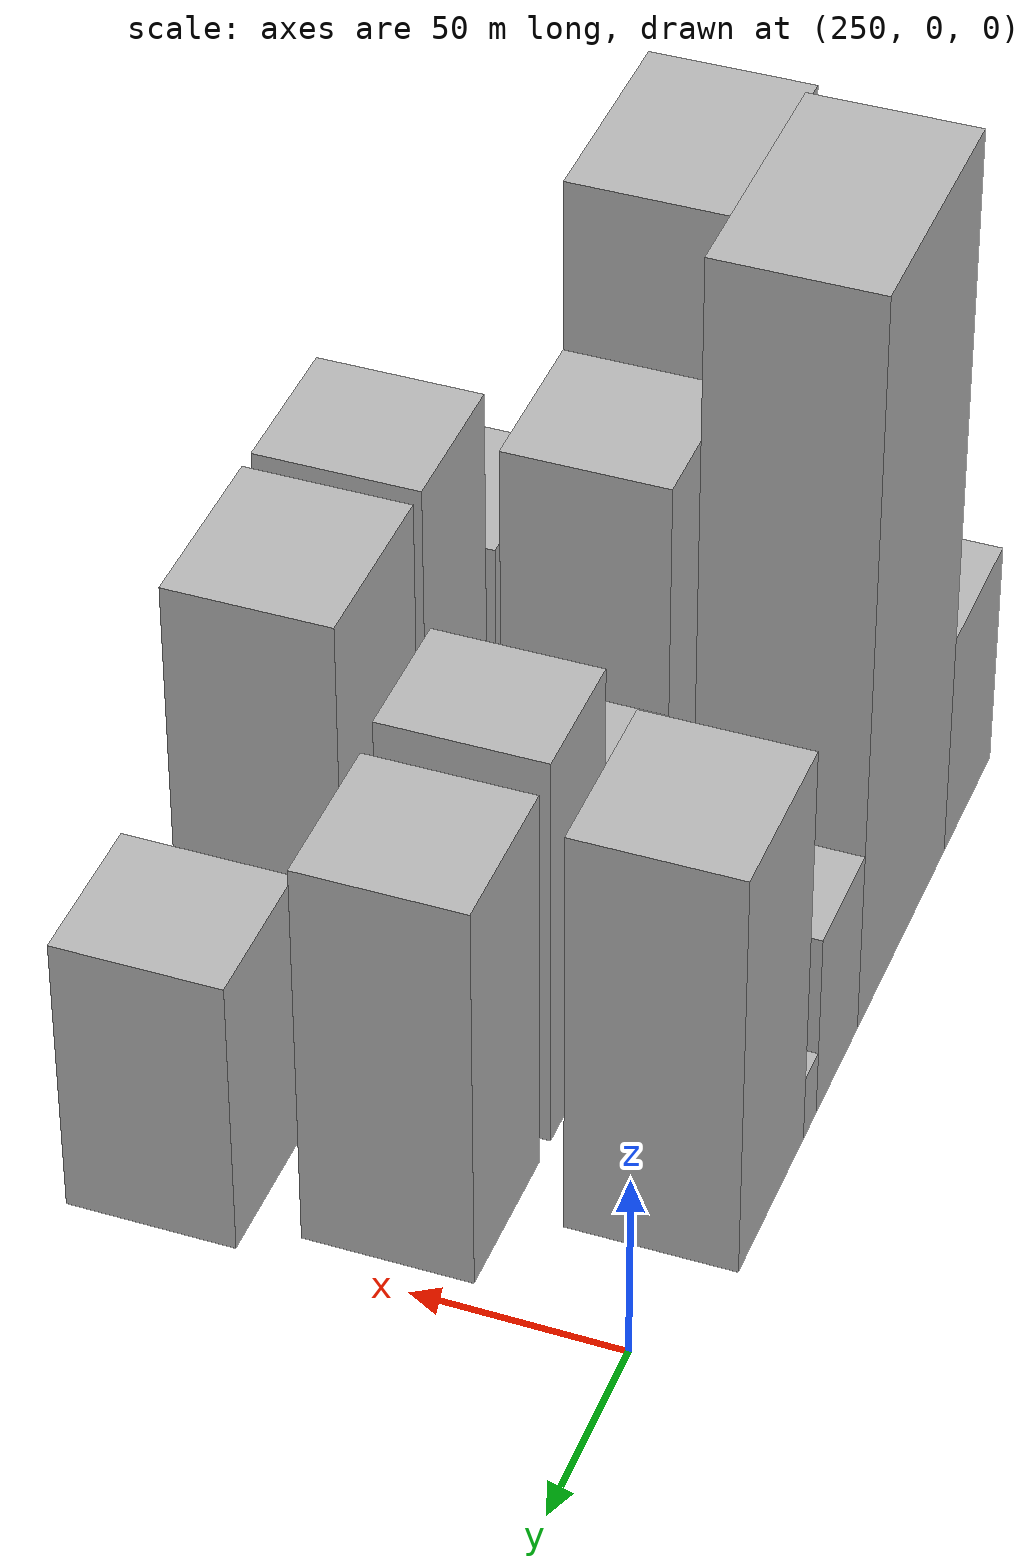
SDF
<sdf version="1.6">
 <world name="default">
  <model name="building_173">
   <static>1</static>
   <pose>256.0000 -196.6353 0 0.000000 0.000000 0.000000</pose>
   <link name="link">
    <pose>0 0 31.50 0 0 0</pose>
    <collision name="collision"><geometry><box><size>40.0000 36.3689 63.0000</size></box></geometry></collision>
    <visual name="visual">
     <cast_shadows>0</cast_shadows>
     <geometry><box><size>40.0000 36.3689 63.0000</size></box></geometry>
     <material>
      <script>
       <uri>model://HANNAS_wall/materials/scripts</uri>
       <uri>model://HANNAS_wall/materials/textures</uri>
       <name>vrc/HANNAS_wall</name>
      </script>
     </material>
    </visual>
   </link>
  </model>
  <model name="building_174">
   <static>1</static>
   <pose>256.0000 -145.7598 0 0.000000 0.000000 0.000000</pose>
   <link name="link">
    <pose>0 0 100.50 0 0 0</pose>
    <collision name="collision"><geometry><box><size>40.0000 65.3820 201.0000</size></box></geometry></collision>
    <visual name="visual">
     <cast_shadows>0</cast_shadows>
     <geometry><box><size>40.0000 65.3820 201.0000</size></box></geometry>
     <material>
      <script>
       <uri>model://HANNAS_wall/materials/scripts</uri>
       <uri>model://HANNAS_wall/materials/textures</uri>
       <name>vrc/HANNAS_wall</name>
      </script>
     </material>
    </visual>
   </link>
  </model>
  <model name="building_175">
   <static>1</static>
   <pose>256.0000 -98.2858 0 0.000000 0.000000 0.000000</pose>
   <link name="link">
    <pose>0 0 25.50 0 0 0</pose>
    <collision name="collision"><geometry><box><size>40.0000 29.5660 51.0000</size></box></geometry></collision>
    <visual name="visual">
     <cast_shadows>0</cast_shadows>
     <geometry><box><size>40.0000 29.5660 51.0000</size></box></geometry>
     <material>
      <script>
       <uri>model://HANNAS_wall/materials/scripts</uri>
       <uri>model://HANNAS_wall/materials/textures</uri>
       <name>vrc/HANNAS_wall</name>
      </script>
     </material>
    </visual>
   </link>
  </model>
  <model name="building_176">
   <static>1</static>
   <pose>256.0000 -79.0485 0 0.000000 0.000000 0.000000</pose>
   <link name="link">
    <pose>0 0 9.00 0 0 0</pose>
    <collision name="collision"><geometry><box><size>40.0000 8.9086 18.0000</size></box></geometry></collision>
    <visual name="visual">
     <cast_shadows>0</cast_shadows>
     <geometry><box><size>40.0000 8.9086 18.0000</size></box></geometry>
     <material>
      <script>
       <uri>model://HANNAS_wall/materials/scripts</uri>
       <uri>model://HANNAS_wall/materials/textures</uri>
       <name>vrc/HANNAS_wall</name>
      </script>
     </material>
    </visual>
   </link>
  </model>
  <model name="building_177">
   <static>1</static>
   <pose>256.0000 -52.5292 0 0.000000 0.000000 0.000000</pose>
   <link name="link">
    <pose>0 0 55.50 0 0 0</pose>
    <collision name="collision"><geometry><box><size>40.0000 44.1301 111.0000</size></box></geometry></collision>
    <visual name="visual">
     <cast_shadows>0</cast_shadows>
     <geometry><box><size>40.0000 44.1301 111.0000</size></box></geometry>
     <material>
      <script>
       <uri>model://HANNAS_wall/materials/scripts</uri>
       <uri>model://HANNAS_wall/materials/textures</uri>
       <name>vrc/HANNAS_wall</name>
      </script>
     </material>
    </visual>
   </link>
  </model>
  <model name="building_220">
   <static>1</static>
   <pose>308.0000 -235.8043 0 0.000000 0.000000 0.000000</pose>
   <link name="link">
    <pose>0 0 16.50 0 0 0</pose>
    <collision name="collision"><geometry><box><size>40.0000 19.6194 33.0000</size></box></geometry></collision>
    <visual name="visual">
     <cast_shadows>0</cast_shadows>
     <geometry><box><size>40.0000 19.6194 33.0000</size></box></geometry>
     <material>
      <script>
       <uri>model://HANNAS_wall/materials/scripts</uri>
       <uri>model://HANNAS_wall/materials/textures</uri>
       <name>vrc/HANNAS_wall</name>
      </script>
     </material>
    </visual>
   </link>
  </model>
  <model name="building_221">
   <static>1</static>
   <pose>308.0000 -198.3180 0 0.000000 0.000000 0.000000</pose>
   <link name="link">
    <pose>0 0 85.50 0 0 0</pose>
    <collision name="collision"><geometry><box><size>40.0000 55.3532 171.0000</size></box></geometry></collision>
    <visual name="visual">
     <cast_shadows>0</cast_shadows>
     <geometry><box><size>40.0000 55.3532 171.0000</size></box></geometry>
     <material>
      <script>
       <uri>model://HANNAS_wall/materials/scripts</uri>
       <uri>model://HANNAS_wall/materials/textures</uri>
       <name>vrc/HANNAS_wall</name>
      </script>
     </material>
    </visual>
   </link>
  </model>
  <model name="building_222">
   <static>1</static>
   <pose>308.0000 -150.4972 0 0.000000 0.000000 0.000000</pose>
   <link name="link">
    <pose>0 0 63.00 0 0 0</pose>
    <collision name="collision"><geometry><box><size>40.0000 40.2885 126.0000</size></box></geometry></collision>
    <visual name="visual">
     <cast_shadows>0</cast_shadows>
     <geometry><box><size>40.0000 40.2885 126.0000</size></box></geometry>
     <material>
      <script>
       <uri>model://HANNAS_wall/materials/scripts</uri>
       <uri>model://HANNAS_wall/materials/textures</uri>
       <name>vrc/HANNAS_wall</name>
      </script>
     </material>
    </visual>
   </link>
  </model>
  <model name="building_223">
   <static>1</static>
   <pose>308.0000 -113.2765 0 0.000000 0.000000 0.000000</pose>
   <link name="link">
    <pose>0 0 31.50 0 0 0</pose>
    <collision name="collision"><geometry><box><size>40.0000 34.1528 63.0000</size></box></geometry></collision>
    <visual name="visual">
     <cast_shadows>0</cast_shadows>
     <geometry><box><size>40.0000 34.1528 63.0000</size></box></geometry>
     <material>
      <script>
       <uri>model://HANNAS_wall/materials/scripts</uri>
       <uri>model://HANNAS_wall/materials/textures</uri>
       <name>vrc/HANNAS_wall</name>
      </script>
     </material>
    </visual>
   </link>
  </model>
  <model name="building_224">
   <static>1</static>
   <pose>308.0000 -92.3622 0 0.000000 0.000000 0.000000</pose>
   <link name="link">
    <pose>0 0 9.00 0 0 0</pose>
    <collision name="collision"><geometry><box><size>40.0000 7.6757 18.0000</size></box></geometry></collision>
    <visual name="visual">
     <cast_shadows>0</cast_shadows>
     <geometry><box><size>40.0000 7.6757 18.0000</size></box></geometry>
     <material>
      <script>
       <uri>model://HANNAS_wall/materials/scripts</uri>
       <uri>model://HANNAS_wall/materials/textures</uri>
       <name>vrc/HANNAS_wall</name>
      </script>
     </material>
    </visual>
   </link>
  </model>
  <model name="building_225">
   <static>1</static>
   <pose>308.0000 -71.6565 0 0.000000 0.000000 0.000000</pose>
   <link name="link">
    <pose>0 0 54.00 0 0 0</pose>
    <collision name="collision"><geometry><box><size>40.0000 33.7355 108.0000</size></box></geometry></collision>
    <visual name="visual">
     <cast_shadows>0</cast_shadows>
     <geometry><box><size>40.0000 33.7355 108.0000</size></box></geometry>
     <material>
      <script>
       <uri>model://HANNAS_wall/materials/scripts</uri>
       <uri>model://HANNAS_wall/materials/textures</uri>
       <name>vrc/HANNAS_wall</name>
      </script>
     </material>
    </visual>
   </link>
  </model>
  <model name="building_226">
   <static>1</static>
   <pose>308.0000 -27.6774 0 0.000000 0.000000 0.000000</pose>
   <link name="link">
    <pose>0 0 52.50 0 0 0</pose>
    <collision name="collision"><geometry><box><size>40.0000 40.2228 105.0000</size></box></geometry></collision>
    <visual name="visual">
     <cast_shadows>0</cast_shadows>
     <geometry><box><size>40.0000 40.2228 105.0000</size></box></geometry>
     <material>
      <script>
       <uri>model://HANNAS_wall/materials/scripts</uri>
       <uri>model://HANNAS_wall/materials/textures</uri>
       <name>vrc/HANNAS_wall</name>
      </script>
     </material>
    </visual>
   </link>
  </model>
  <model name="building_266">
   <static>1</static>
   <pose>360.0000 -221.8432 0 0.000000 0.000000 0.000000</pose>
   <link name="link">
    <pose>0 0 19.50 0 0 0</pose>
    <collision name="collision"><geometry><box><size>40.0000 19.5593 39.0000</size></box></geometry></collision>
    <visual name="visual">
     <cast_shadows>0</cast_shadows>
     <geometry><box><size>40.0000 19.5593 39.0000</size></box></geometry>
     <material>
      <script>
       <uri>model://HANNAS_wall/materials/scripts</uri>
       <uri>model://HANNAS_wall/materials/textures</uri>
       <name>vrc/HANNAS_wall</name>
      </script>
     </material>
    </visual>
   </link>
  </model>
  <model name="building_267">
   <static>1</static>
   <pose>360.0000 -180.3667 0 0.000000 0.000000 0.000000</pose>
   <link name="link">
    <pose>0 0 37.50 0 0 0</pose>
    <collision name="collision"><geometry><box><size>40.0000 43.3938 75.0000</size></box></geometry></collision>
    <visual name="visual">
     <cast_shadows>0</cast_shadows>
     <geometry><box><size>40.0000 43.3938 75.0000</size></box></geometry>
     <material>
      <script>
       <uri>model://HANNAS_wall/materials/scripts</uri>
       <uri>model://HANNAS_wall/materials/textures</uri>
       <name>vrc/HANNAS_wall</name>
      </script>
     </material>
    </visual>
   </link>
  </model>
  <model name="building_268">
   <static>1</static>
   <pose>360.0000 -155.6695 0 0.000000 0.000000 0.000000</pose>
   <link name="link">
    <pose>0 0 7.50 0 0 0</pose>
    <collision name="collision"><geometry><box><size>40.0000 6.0005 15.0000</size></box></geometry></collision>
    <visual name="visual">
     <cast_shadows>0</cast_shadows>
     <geometry><box><size>40.0000 6.0005 15.0000</size></box></geometry>
     <material>
      <script>
       <uri>model://HANNAS_wall/materials/scripts</uri>
       <uri>model://HANNAS_wall/materials/textures</uri>
       <name>vrc/HANNAS_wall</name>
      </script>
     </material>
    </visual>
   </link>
  </model>
  <model name="building_269">
   <static>1</static>
   <pose>360.0000 -133.6186 0 0.000000 0.000000 0.000000</pose>
   <link name="link">
    <pose>0 0 61.50 0 0 0</pose>
    <collision name="collision"><geometry><box><size>40.0000 38.1014 123.0000</size></box></geometry></collision>
    <visual name="visual">
     <cast_shadows>0</cast_shadows>
     <geometry><box><size>40.0000 38.1014 123.0000</size></box></geometry>
     <material>
      <script>
       <uri>model://HANNAS_wall/materials/scripts</uri>
       <uri>model://HANNAS_wall/materials/textures</uri>
       <name>vrc/HANNAS_wall</name>
      </script>
     </material>
    </visual>
   </link>
  </model>
  <model name="building_270">
   <static>1</static>
   <pose>360.0000 -86.7126 0 0.000000 0.000000 0.000000</pose>
   <link name="link">
    <pose>0 0 61.50 0 0 0</pose>
    <collision name="collision"><geometry><box><size>40.0000 45.7107 123.0000</size></box></geometry></collision>
    <visual name="visual">
     <cast_shadows>0</cast_shadows>
     <geometry><box><size>40.0000 45.7107 123.0000</size></box></geometry>
     <material>
      <script>
       <uri>model://HANNAS_wall/materials/scripts</uri>
       <uri>model://HANNAS_wall/materials/textures</uri>
       <name>vrc/HANNAS_wall</name>
      </script>
     </material>
    </visual>
   </link>
  </model>
  <model name="building_271">
   <static>1</static>
   <pose>360.0000 -47.5409 0 0.000000 0.000000 0.000000</pose>
   <link name="link">
    <pose>0 0 16.50 0 0 0</pose>
    <collision name="collision"><geometry><box><size>40.0000 18.6327 33.0000</size></box></geometry></collision>
    <visual name="visual">
     <cast_shadows>0</cast_shadows>
     <geometry><box><size>40.0000 18.6327 33.0000</size></box></geometry>
     <material>
      <script>
       <uri>model://HANNAS_wall/materials/scripts</uri>
       <uri>model://HANNAS_wall/materials/textures</uri>
       <name>vrc/HANNAS_wall</name>
      </script>
     </material>
    </visual>
   </link>
  </model>
  <model name="building_272">
   <static>1</static>
   <pose>360.0000 -18.9346 0 0.000000 0.000000 0.000000</pose>
   <link name="link">
    <pose>0 0 37.50 0 0 0</pose>
    <collision name="collision"><geometry><box><size>40.0000 38.5800 75.0000</size></box></geometry></collision>
    <visual name="visual">
     <cast_shadows>0</cast_shadows>
     <geometry><box><size>40.0000 38.5800 75.0000</size></box></geometry>
     <material>
      <script>
       <uri>model://HANNAS_wall/materials/scripts</uri>
       <uri>model://HANNAS_wall/materials/textures</uri>
       <name>vrc/HANNAS_wall</name>
      </script>
     </material>
    </visual>
   </link>
  </model>
 </world>
</sdf>
